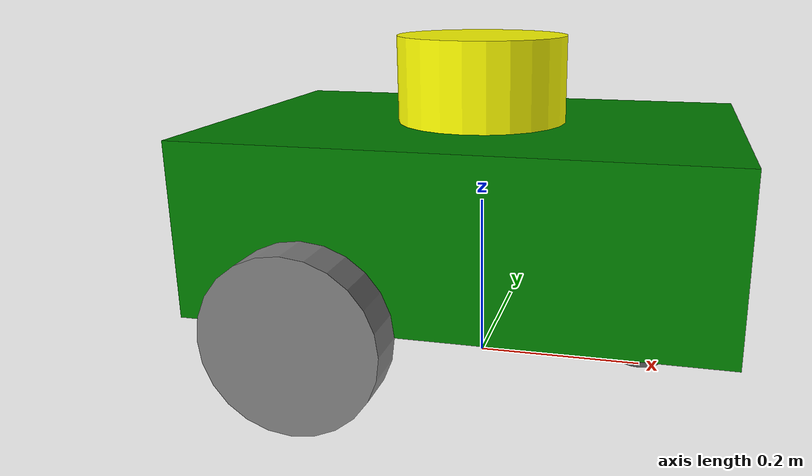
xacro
<?xml version="1.0"?>
<robot name="mobile_base_with_sensors" xmlns:xacro="http://www.ros.org/wiki/xacro">

    <xacro:include filename="common_properties.xacro"/>
    <xacro:include filename="robot_parts/mobile_base.xacro"/>
    <xacro:include filename="robot_parts/mobile_base_gazebo.xacro"/>
    <xacro:include filename="sensors/camera.xacro"/>
    <xacro:include filename="sensors/2d_lidar.xacro"/>

</robot>

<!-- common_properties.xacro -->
<robot xmlns:xacro="http://www.ros.org/wiki/xacro">

    <material name="green">
        <color rgba="0 0.5 0 1"/>
    </material>
    <material name="blue">
        <color rgba="0 0 0.5 1"/>
    </material>
    <material name="grey">
        <color rgba="0.5 0.5 0.5 1"/>
    </material>
    <material name="orange">
        <color rgba="1 0.3 0 1"/>
    </material>
    <material name="yellow">
        <color rgba="1 1 0 1"/>
    </material>

    <xacro:macro name="inertia_box" params="m l w h xyz rpy">
        <inertial>
            <origin xyz="${xyz}" rpy="${rpy}"/>
            <mass value="${m}" />
            <inertia ixx="${(1.0/12.0) * m * (h*h + l*l)}" ixy="0" ixz="0"
                iyy="${(1.0/12.0) * m * (w*w + l*l)}" iyz="0" izz="${(1.0/12.0) * m * (w*w + h*h)}"/>
        </inertial>
    </xacro:macro>

    <xacro:macro name="inertia_cylinder" params="m r h xyz rpy">
        <inertial>
            <origin xyz="${xyz}" rpy="${rpy}"/>
            <mass value="${m}" />
            <inertia ixx="${(1.0/12.0) * m * ((3*r*r) + h*h)}" ixy="0" ixz="0"
                iyy="${(1.0/12.0) * m * (3*r*r + h*h)}" iyz="0" izz="${(1.0/2.0) * m * (r*r)}"/>
        </inertial>
    </xacro:macro>

    <xacro:macro name="inertia_sphere" params="m r xyz rpy">
        <inertial>
            <origin xyz="${xyz}" rpy="${rpy}"/>
            <mass value="${m}" />
            <inertia ixx="${(2/5.0) * m * (r*r)}" ixy="0" ixz="0"
                iyy="${(2/5.0) * m * (r*r)}" iyz="0" izz="${(2/5.0) * m * (r*r)}"/>
        </inertial>
    </xacro:macro>

</robot>

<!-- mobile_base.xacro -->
<robot xmlns:xacro="http://www.ros.org/wiki/xacro">

    <xacro:property name="base_length"
        value="0.6"/>
    <xacro:property name="base_width"
        value="0.4"/>
    <xacro:property name="base_height"
        value="0.2"/>
    <xacro:property name="base_mass"
        value="5.0"/>

    <xacro:property name="wheel_width"
        value="0.05" />
    <xacro:property name="wheel_radius"
        value="0.1" />
    <xacro:property name="wheel_mass"
        value="1.0"/>

    <xacro:property name="caster_radius"
        value="${wheel_radius / 2.0}" />
    <xacro:property name="caster_mass"
        value="0.5"/>

    <link name="base_footprint"/>

    <link name="base_link">
        <visual>
            <geometry>
                <box size="${base_length} ${base_width} ${base_height}"/>
            </geometry>
            <origin xyz="0 0 ${base_height / 2.0}"
                rpy="0 0 0"/>
            <material name="green"/>
        </visual>
        <collision>
            <geometry>
                <box size="${base_length} ${base_width} ${base_height}"/>
            </geometry>
            <origin xyz="0 0 ${base_height / 2.0}"
                rpy="0 0 0"/>
        </collision>
        <xacro:inertia_box m="${base_mass}"
            l="${base_length}"
            w="${base_width}"
            h="${base_height}"
            xyz="0 0 ${base_height / 2.0}"
            rpy="0 0 0"/>
    </link>

    <xacro:macro name="wheel_link"
        params="prefix">
        <link name="${prefix}_wheel_link">
            <visual>
                <geometry>
                    <cylinder radius="${wheel_radius}"
                        length="${wheel_width}"/>
                </geometry>
                <origin xyz="0 0 0"
                    rpy="${pi / 2.0} 0 0"/>
                <material name="grey"/>
            </visual>
            <collision>
                <geometry>
                    <cylinder radius="${wheel_radius}"
                        length="${wheel_width}"/>
                </geometry>
                <origin xyz="0 0 0"
                    rpy="${pi / 2.0} 0 0"/>
            </collision>
            <xacro:inertia_cylinder m="${wheel_mass}"
                r="${wheel_radius}"
                h="${wheel_width}"
                xyz="0 0 0"
                rpy="${pi / 2.0} 0 0"/>
        </link>
    </xacro:macro>

    <xacro:wheel_link prefix="left"/>
    <xacro:wheel_link prefix="right"/>

    <link name="caster_wheel_link">
        <visual>
            <geometry>
                <sphere radius="${caster_radius}"/>
            </geometry>
            <origin xyz="0 0 ${- caster_radius / 2.0}"
                rpy="0 0 0"/>
            <material name="grey"/>
        </visual>
        <collision>
            <geometry>
                <sphere radius="${caster_radius}"/>
            </geometry>
            <origin xyz="0 0 ${- caster_radius / 2.0}"
                rpy="0 0 0"/>
        </collision>
        <xacro:inertia_sphere m="${caster_mass}"
            r="${caster_radius}"
            xyz="0 0 ${- caster_radius / 2.0}"
            rpy="0 0 0"/>
    </link>

    <joint name="base_footprint_joint"
        type="fixed">
        <parent link="base_footprint" />
        <child link="base_link"/>
        <origin xyz="0 0 ${wheel_radius}"
            rpy="0 0 0"/>
    </joint>

    <!-- Provide side as -1 or 1 depending on left or right -->
    <xacro:macro name="wheel_joint"
        params="prefix side">
        <joint name="base_${prefix}_wheel_joint"
            type="continuous">
            <parent link="base_link"/>
            <child link="${prefix}_wheel_link" />
            <origin xyz="${-base_length / 4.0} ${side * (base_width / 2.0 + wheel_width / 2.0)} 0"
                rpy="0 0 0"/>
            <axis xyz="0 1 0" />
        </joint>
    </xacro:macro>

    <xacro:wheel_joint prefix="left"
        side="1.0"/>
    <xacro:wheel_joint prefix="right"
        side="-1.0"/>

    <joint name="base_caster_wheel_joint"
        type="fixed">
        <parent link="base_link"/>
        <child link="caster_wheel_link" />
        <origin xyz="${base_length / 3.0} 0 ${-caster_radius / 2.0}"
            rpy="0 0 0"/>
    </joint>

</robot>

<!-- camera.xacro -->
<?cml version="1.0"?>
<robot xmlns:xacro="https://www.ros.org/wiki/xacro">

    <xacro:property name="show_camera_gazebo" value="true"/>

    <link name="camera_link">
        <visual>
            <geometry>
                <box size="0.01 0.1 0.05" />
            </geometry>
            <material name="grey" />
        </visual>
        <collision>
            <geometry>
                <box size="0.01 0.1 0.05" />
            </geometry>
        </collision>
        <xacro:inertia_box m="0.1" l="0.01" w="0.1" h="0.05" xyz="0 0 0" rpy="0 0 0"/>
    </link>

    <joint name="base_camera_joint" type="fixed">
        <parent link="base_link"/>
        <child link="camera_link" />
        <origin xyz="0.305 0 ${base_height / 2.0}" rpy="0 0 0" />
    </joint>

    <gazebo reference="camera_link">
        <material>Gazebo/Yellow</material>
        <sensor name="camera_sensor" type="camera">
            <pose>0 0 0 0 0 0</pose>
            <visualize>${show_camera_gazebo}</visualize>
            <update_rate>10.0</update_rate>
            <plugin name="camera_controller" filename="libgazebo_ros_camera.so">
                <frame_name>camera_link</frame_name>
            </plugin>
        </sensor>
    </gazebo>

</robot>

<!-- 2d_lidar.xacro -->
<robot xmlns:xacro="https://www.ros.org/wiki/xacro">

    <xacro:property name="lidar_radius"
        value="0.1"/>
    <xacro:property name="lidar_height"
        value="0.1"/>
    <xacro:property name="show_lidar_gazebo"
        value="true"/>

    <link name="2d_lidar_link">
        <visual>
            <geometry>
                <cylinder radius="${lidar_radius}"
                    length="${lidar_height}"/>
            </geometry>
            <material name="yellow"/>
            <origin xyz="0 0 ${lidar_height / 2.0}"
                rpy="0 0 0"/>
        </visual>
        <collision>
            <geometry>
                <cylinder radius="0.1"
                    length="0.1"/>
            </geometry>
            <origin xyz="0 0 ${lidar_height / 2.0}"
                rpy="0 0 0"/>
        </collision>
        <xacro:inertia_cylinder m="0.3"
            r="${lidar_radius}"
            h="${lidar_height}"
            xyz="0 0 ${lidar_height / 2.0}"
            rpy="0 0 0" />
    </link>

    <link name="laser_scan_link"/>

    <joint name="base_lidar_joint"
        type="fixed">
        <parent link="base_link"/>
        <child link="2d_lidar_link"/>
        <origin xyz="0 0 ${base_height}"
            rpy="0 0 0"/>
    </joint>

    <joint name="2d_lidar_laser_scan_joint"
        type="fixed">
        <parent link="2d_lidar_link"/>
        <child link="laser_scan_link"/>
        <origin xyz="0 0 ${lidar_height / 2.0}"
            rpy="0 0 0"/>
    </joint>

    <gazebo reference="laser_scan_link">
        <material>Gazebo/Yellow</material>
        <sensor type="ray"
            name="lds_lfcd_sensor">
            <pose>0 0 0 0 0 0</pose>
            <visualize>${show_lidar_gazebo}</visualize>
            <update_rate>5</update_rate>
            <ray>
                <scan>
                    <horizontal>
                        <samples>360</samples>
                        <resolution>1</resolution>
                        <min_angle>0.0</min_angle>
                        <max_angle>6.28319</max_angle>
                    </horizontal>
                </scan>
                <range>
                    <min>0.120</min>
                    <max>20</max>
                    <resolution>0.015</resolution>
                </range>
                <noise>
                    <type>gaussian</type>
                    <mean>0.0</mean>
                    <stddev>0.01</stddev>
                </noise>
            </ray>
            <plugin name="ray_sensor_controller"
                filename="libgazebo_ros_ray_sensor.so">
                <ros>
                    <!-- Configure namespace and remap to publish to /ray/pointcloud2 -->
                    <namespace>/ray</namespace>
                    <remapping>~/out:=laser_scan</remapping>
                </ros>
                <!-- Output as a PointCloud2, see above for other types -->
                <output_type>sensor_msgs/LaserScan</output_type>
                <!-- Clip intensity values so all are above 100, optional -->
                <min_intensity>100.0</min_intensity>
                <!-- Frame id for header of output, defaults to sensor's parent link name -->
                <frame_name>laser_scan_link</frame_name>
            </plugin>
        </sensor>
    </gazebo>

</robot>
